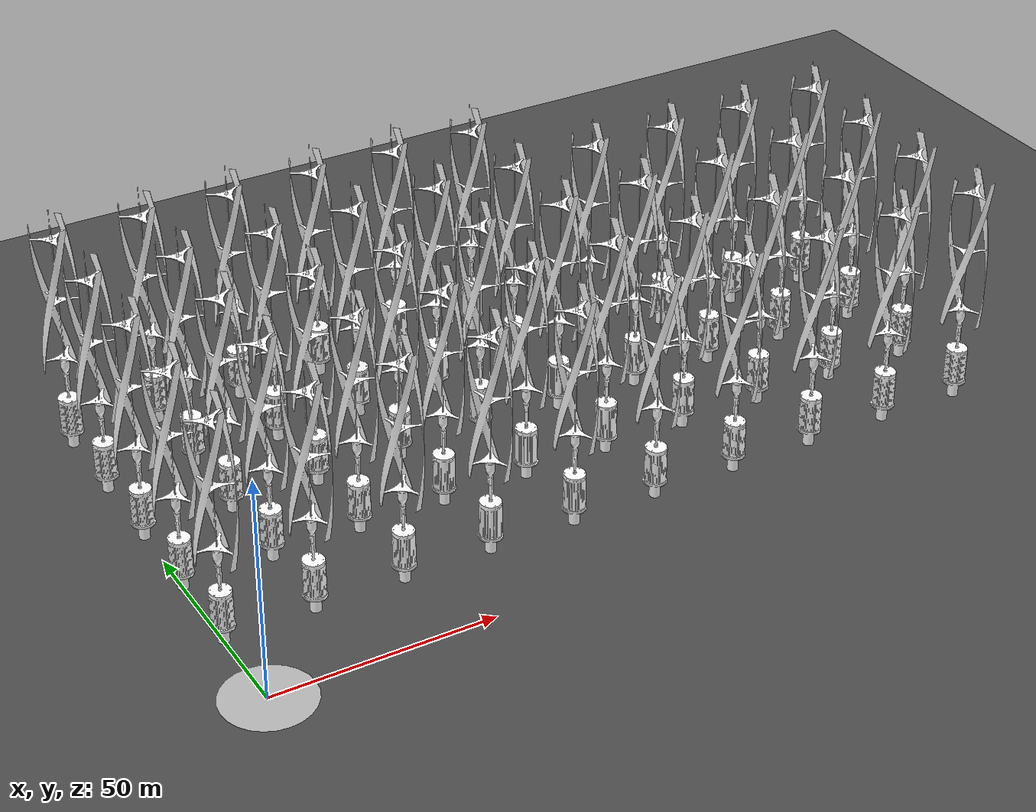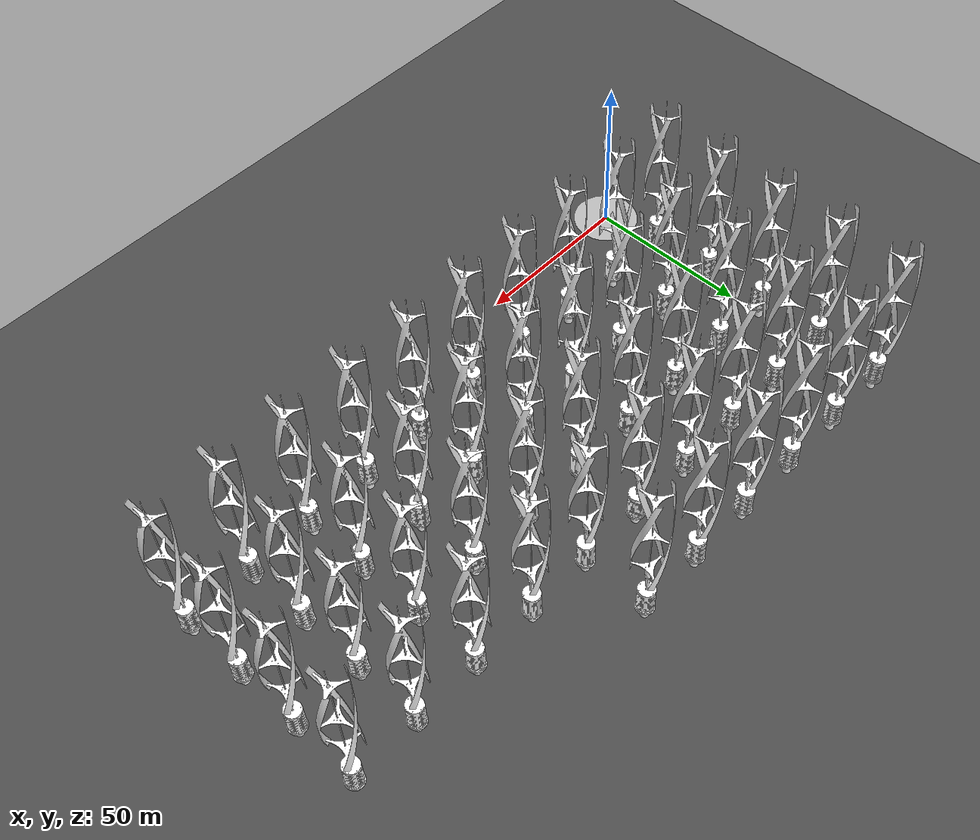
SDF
<sdf version="1.5">
 <world name="default">
  <include><uri>model://sun</uri></include>
  <model name="Helideck FPSO">
   <static>true</static>
   <link name="link">
    <collision name="helideck">
     <pose>0 0 0 3.14 0 0</pose>
     <scale>2 2 1</scale>
     <geometry><mesh><uri>model://helideck/meshes/helideckdae.dae</uri></mesh></geometry>
    </collision>
    <visual name="helideck">
     <pose>0 0 0 3.14 0 0</pose>
     <scale>2 2 1</scale>
     <geometry><mesh><uri>model://helideck/meshes/helideckdae.dae</uri></mesh></geometry>
    </visual>
    <visual name="helideck2">
     <pose>0 0 -0.1 0 0 0</pose>
     <scale>2 2 1</scale>
     <geometry><mesh><uri>model://helideck/meshes/helideckdae.dae</uri></mesh></geometry>
    </visual>
   </link>
  </model>
  <model name="gramado">
   <static>1</static>
   <link name="link">
    <collision name="collision"><geometry><box><size>2000 2000 0.1</size></box></geometry></collision>
    <visual name="visual">
     <cast_shadows>0</cast_shadows>
     <geometry><box><size>2000 2000 0.1</size></box></geometry>
     <material>
      <script>
       <uri>model://gramado/materials/scripts</uri>
       <uri>model://gramado/materials/textures</uri>
       <name>vrc/asphalt</name>
      </script>
     </material>
    </visual>
   </link>
   <pose>0 0 -0.1 0 -0 0</pose>
  </model>
  <model name="Turbina Eolica Vertical0">
   <static>1</static>
   <link name="link">
    <visual name="turbina_eolica_vertical">
     <geometry><mesh><uri>model://turbina_eolica/meshes/turbina_vertical.dae</uri></mesh></geometry>
    </visual>
   </link>
   <pose>0 20 0 0 -0 0</pose>
  </model>
  <model name="Turbina Eolica Vertical1">
   <static>1</static>
   <link name="link">
    <visual name="turbina_eolica_vertical">
     <geometry><mesh><uri>model://turbina_eolica/meshes/turbina_vertical.dae</uri></mesh></geometry>
    </visual>
   </link>
   <pose>0 40 0 0 -0 0</pose>
  </model>
  <model name="Turbina Eolica Vertical2">
   <static>1</static>
   <link name="link">
    <visual name="turbina_eolica_vertical">
     <geometry><mesh><uri>model://turbina_eolica/meshes/turbina_vertical.dae</uri></mesh></geometry>
    </visual>
   </link>
   <pose>0 60 0 0 -0 0</pose>
  </model>
  <model name="Turbina Eolica Vertical3">
   <static>1</static>
   <link name="link">
    <visual name="turbina_eolica_vertical">
     <geometry><mesh><uri>model://turbina_eolica/meshes/turbina_vertical.dae</uri></mesh></geometry>
    </visual>
   </link>
   <pose>0 80 0 0 -0 0</pose>
  </model>
  <model name="Turbina Eolica Vertical4">
   <static>1</static>
   <link name="link">
    <visual name="turbina_eolica_vertical">
     <geometry><mesh><uri>model://turbina_eolica/meshes/turbina_vertical.dae</uri></mesh></geometry>
    </visual>
   </link>
   <pose>0 100 0 0 -0 0</pose>
  </model>
  <model name="Turbina Eolica Vertical10">
   <static>1</static>
   <link name="link">
    <visual name="turbina_eolica_vertical">
     <geometry><mesh><uri>model://turbina_eolica/meshes/turbina_vertical.dae</uri></mesh></geometry>
    </visual>
   </link>
   <pose>20 20 0 0 -0 0</pose>
  </model>
  <model name="Turbina Eolica Vertical11">
   <static>1</static>
   <link name="link">
    <visual name="turbina_eolica_vertical">
     <geometry><mesh><uri>model://turbina_eolica/meshes/turbina_vertical.dae</uri></mesh></geometry>
    </visual>
   </link>
   <pose>20 40 0 0 -0 0</pose>
  </model>
  <model name="Turbina Eolica Vertical12">
   <static>1</static>
   <link name="link">
    <visual name="turbina_eolica_vertical">
     <geometry><mesh><uri>model://turbina_eolica/meshes/turbina_vertical.dae</uri></mesh></geometry>
    </visual>
   </link>
   <pose>20 60 0 0 -0 0</pose>
  </model>
  <model name="Turbina Eolica Vertical13">
   <static>1</static>
   <link name="link">
    <visual name="turbina_eolica_vertical">
     <geometry><mesh><uri>model://turbina_eolica/meshes/turbina_vertical.dae</uri></mesh></geometry>
    </visual>
   </link>
   <pose>20 80 0 0 -0 0</pose>
  </model>
  <model name="Turbina Eolica Vertical14">
   <static>1</static>
   <link name="link">
    <visual name="turbina_eolica_vertical">
     <geometry><mesh><uri>model://turbina_eolica/meshes/turbina_vertical.dae</uri></mesh></geometry>
    </visual>
   </link>
   <pose>20 100 0 0 -0 0</pose>
  </model>
  <model name="Turbina Eolica Vertical20">
   <static>1</static>
   <link name="link">
    <visual name="turbina_eolica_vertical">
     <geometry><mesh><uri>model://turbina_eolica/meshes/turbina_vertical.dae</uri></mesh></geometry>
    </visual>
   </link>
   <pose>40 20 0 0 -0 0</pose>
  </model>
  <model name="Turbina Eolica Vertical21">
   <static>1</static>
   <link name="link">
    <visual name="turbina_eolica_vertical">
     <geometry><mesh><uri>model://turbina_eolica/meshes/turbina_vertical.dae</uri></mesh></geometry>
    </visual>
   </link>
   <pose>40 40 0 0 -0 0</pose>
  </model>
  <model name="Turbina Eolica Vertical22">
   <static>1</static>
   <link name="link">
    <visual name="turbina_eolica_vertical">
     <geometry><mesh><uri>model://turbina_eolica/meshes/turbina_vertical.dae</uri></mesh></geometry>
    </visual>
   </link>
   <pose>40 60 0 0 -0 0</pose>
  </model>
  <model name="Turbina Eolica Vertical23">
   <static>1</static>
   <link name="link">
    <visual name="turbina_eolica_vertical">
     <geometry><mesh><uri>model://turbina_eolica/meshes/turbina_vertical.dae</uri></mesh></geometry>
    </visual>
   </link>
   <pose>40 80 0 0 -0 0</pose>
  </model>
  <model name="Turbina Eolica Vertical24">
   <static>1</static>
   <link name="link">
    <visual name="turbina_eolica_vertical">
     <geometry><mesh><uri>model://turbina_eolica/meshes/turbina_vertical.dae</uri></mesh></geometry>
    </visual>
   </link>
   <pose>40 100 0 0 -0 0</pose>
  </model>
  <model name="Turbina Eolica Vertical30">
   <static>1</static>
   <link name="link">
    <visual name="turbina_eolica_vertical">
     <geometry><mesh><uri>model://turbina_eolica/meshes/turbina_vertical.dae</uri></mesh></geometry>
    </visual>
   </link>
   <pose>60 20 0 0 -0 0</pose>
  </model>
  <model name="Turbina Eolica Vertical31">
   <static>1</static>
   <link name="link">
    <visual name="turbina_eolica_vertical">
     <geometry><mesh><uri>model://turbina_eolica/meshes/turbina_vertical.dae</uri></mesh></geometry>
    </visual>
   </link>
   <pose>60 40 0 0 -0 0</pose>
  </model>
  <model name="Turbina Eolica Vertical32">
   <static>1</static>
   <link name="link">
    <visual name="turbina_eolica_vertical">
     <geometry><mesh><uri>model://turbina_eolica/meshes/turbina_vertical.dae</uri></mesh></geometry>
    </visual>
   </link>
   <pose>60 60 0 0 -0 0</pose>
  </model>
  <model name="Turbina Eolica Vertical33">
   <static>1</static>
   <link name="link">
    <visual name="turbina_eolica_vertical">
     <geometry><mesh><uri>model://turbina_eolica/meshes/turbina_vertical.dae</uri></mesh></geometry>
    </visual>
   </link>
   <pose>60 80 0 0 -0 0</pose>
  </model>
  <model name="Turbina Eolica Vertical34">
   <static>1</static>
   <link name="link">
    <visual name="turbina_eolica_vertical">
     <geometry><mesh><uri>model://turbina_eolica/meshes/turbina_vertical.dae</uri></mesh></geometry>
    </visual>
   </link>
   <pose>60 100 0 0 -0 0</pose>
  </model>
  <model name="Turbina Eolica Vertical40">
   <static>1</static>
   <link name="link">
    <visual name="turbina_eolica_vertical">
     <geometry><mesh><uri>model://turbina_eolica/meshes/turbina_vertical.dae</uri></mesh></geometry>
    </visual>
   </link>
   <pose>80 20 0 0 -0 0</pose>
  </model>
  <model name="Turbina Eolica Vertical41">
   <static>1</static>
   <link name="link">
    <visual name="turbina_eolica_vertical">
     <geometry><mesh><uri>model://turbina_eolica/meshes/turbina_vertical.dae</uri></mesh></geometry>
    </visual>
   </link>
   <pose>80 40 0 0 -0 0</pose>
  </model>
  <model name="Turbina Eolica Vertical42">
   <static>1</static>
   <link name="link">
    <visual name="turbina_eolica_vertical">
     <geometry><mesh><uri>model://turbina_eolica/meshes/turbina_vertical.dae</uri></mesh></geometry>
    </visual>
   </link>
   <pose>80 60 0 0 -0 0</pose>
  </model>
  <model name="Turbina Eolica Vertical43">
   <static>1</static>
   <link name="link">
    <visual name="turbina_eolica_vertical">
     <geometry><mesh><uri>model://turbina_eolica/meshes/turbina_vertical.dae</uri></mesh></geometry>
    </visual>
   </link>
   <pose>80 80 0 0 -0 0</pose>
  </model>
  <model name="Turbina Eolica Vertical44">
   <static>1</static>
   <link name="link">
    <visual name="turbina_eolica_vertical">
     <geometry><mesh><uri>model://turbina_eolica/meshes/turbina_vertical.dae</uri></mesh></geometry>
    </visual>
   </link>
   <pose>80 100 0 0 -0 0</pose>
  </model>
  <model name="Turbina Eolica Vertical50">
   <static>1</static>
   <link name="link">
    <visual name="turbina_eolica_vertical">
     <pose>100 0 0 0 -0 0</pose>
     <geometry><mesh><uri>model://turbina_eolica/meshes/turbina_vertical.dae</uri></mesh></geometry>
    </visual>
   </link>
   <pose>0 20 0 0 -0 0</pose>
  </model>
  <model name="Turbina Eolica Vertical51">
   <static>1</static>
   <link name="link">
    <visual name="turbina_eolica_vertical">
     <geometry><mesh><uri>model://turbina_eolica/meshes/turbina_vertical.dae</uri></mesh></geometry>
    </visual>
   </link>
   <pose>100 40 0 0 -0 0</pose>
  </model>
  <model name="Turbina Eolica Vertical52">
   <static>1</static>
   <link name="link">
    <visual name="turbina_eolica_vertical">
     <geometry><mesh><uri>model://turbina_eolica/meshes/turbina_vertical.dae</uri></mesh></geometry>
    </visual>
   </link>
   <pose>100 60 0 0 -0 0</pose>
  </model>
  <model name="Turbina Eolica Vertical53">
   <static>1</static>
   <link name="link">
    <visual name="turbina_eolica_vertical">
     <geometry><mesh><uri>model://turbina_eolica/meshes/turbina_vertical.dae</uri></mesh></geometry>
    </visual>
   </link>
   <pose>100 80 0 0 -0 0</pose>
  </model>
  <model name="Turbina Eolica Vertical54">
   <static>1</static>
   <link name="link">
    <visual name="turbina_eolica_vertical">
     <geometry><mesh><uri>model://turbina_eolica/meshes/turbina_vertical.dae</uri></mesh></geometry>
    </visual>
   </link>
   <pose>100 100 0 0 -0 0</pose>
  </model>
  <model name="Turbina Eolica Vertical60">
   <static>1</static>
   <link name="link">
    <visual name="turbina_eolica_vertical">
     <geometry><mesh><uri>model://turbina_eolica/meshes/turbina_vertical.dae</uri></mesh></geometry>
    </visual>
   </link>
   <pose>120 20 0 0 -0 0</pose>
  </model>
  <model name="Turbina Eolica Vertical61">
   <static>1</static>
   <link name="link">
    <visual name="turbina_eolica_vertical">
     <geometry><mesh><uri>model://turbina_eolica/meshes/turbina_vertical.dae</uri></mesh></geometry>
    </visual>
   </link>
   <pose>120 40 0 0 -0 0</pose>
  </model>
  <model name="Turbina Eolica Vertical62">
   <static>1</static>
   <link name="link">
    <visual name="turbina_eolica_vertical">
     <geometry><mesh><uri>model://turbina_eolica/meshes/turbina_vertical.dae</uri></mesh></geometry>
    </visual>
   </link>
   <pose>120 60 0 0 -0 0</pose>
  </model>
  <model name="Turbina Eolica Vertical63">
   <static>1</static>
   <link name="link">
    <visual name="turbina_eolica_vertical">
     <geometry><mesh><uri>model://turbina_eolica/meshes/turbina_vertical.dae</uri></mesh></geometry>
    </visual>
   </link>
   <pose>120 80 0 0 -0 0</pose>
  </model>
  <model name="Turbina Eolica Vertical70">
   <static>1</static>
   <link name="link">
    <visual name="turbina_eolica_vertical">
     <geometry><mesh><uri>model://turbina_eolica/meshes/turbina_vertical.dae</uri></mesh></geometry>
    </visual>
   </link>
   <pose>140 20 0 0 -0 0</pose>
  </model>
  <model name="Turbina Eolica Vertical71">
   <static>1</static>
   <link name="link">
    <visual name="turbina_eolica_vertical">
     <geometry><mesh><uri>model://turbina_eolica/meshes/turbina_vertical.dae</uri></mesh></geometry>
    </visual>
   </link>
   <pose>140 40 0 0 -0 0</pose>
  </model>
  <model name="Turbina Eolica Vertical72">
   <static>1</static>
   <link name="link">
    <visual name="turbina_eolica_vertical">
     <geometry><mesh><uri>model://turbina_eolica/meshes/turbina_vertical.dae</uri></mesh></geometry>
    </visual>
   </link>
   <pose>140 60 0 0 -0 0</pose>
  </model>
  <model name="Turbina Eolica Vertical73">
   <static>1</static>
   <link name="link">
    <visual name="turbina_eolica_vertical">
     <geometry><mesh><uri>model://turbina_eolica/meshes/turbina_vertical.dae</uri></mesh></geometry>
    </visual>
   </link>
   <pose>140 80 0 0 -0 0</pose>
  </model>
  <model name="Turbina Eolica Vertical80">
   <static>1</static>
   <link name="link">
    <visual name="turbina_eolica_vertical">
     <geometry><mesh><uri>model://turbina_eolica/meshes/turbina_vertical.dae</uri></mesh></geometry>
    </visual>
   </link>
   <pose>160 20 0 0 -0 0</pose>
  </model>
  <model name="Turbina Eolica Vertical81">
   <static>1</static>
   <link name="link">
    <visual name="turbina_eolica_vertical">
     <geometry><mesh><uri>model://turbina_eolica/meshes/turbina_vertical.dae</uri></mesh></geometry>
    </visual>
   </link>
   <pose>160 40 0 0 -0 0</pose>
  </model>
  <model name="Turbina Eolica Vertical82">
   <static>1</static>
   <link name="link">
    <visual name="turbina_eolica_vertical">
     <geometry><mesh><uri>model://turbina_eolica/meshes/turbina_vertical.dae</uri></mesh></geometry>
    </visual>
   </link>
   <pose>160 60 0 0 -0 0</pose>
  </model>
  <model name="Turbina Eolica Vertical83">
   <static>1</static>
   <link name="link">
    <visual name="turbina_eolica_vertical">
     <geometry><mesh><uri>model://turbina_eolica/meshes/turbina_vertical.dae</uri></mesh></geometry>
    </visual>
   </link>
   <pose>160 80 0 0 -0 0</pose>
  </model>
  <model name="Turbina Eolica Vertical90">
   <static>1</static>
   <link name="link">
    <visual name="turbina_eolica_vertical">
     <geometry><mesh><uri>model://turbina_eolica/meshes/turbina_vertical.dae</uri></mesh></geometry>
    </visual>
   </link>
   <pose>180 20 0 0 -0 0</pose>
  </model>
  <model name="Turbina Eolica Vertical91">
   <static>1</static>
   <link name="link">
    <visual name="turbina_eolica_vertical">
     <geometry><mesh><uri>model://turbina_eolica/meshes/turbina_vertical.dae</uri></mesh></geometry>
    </visual>
   </link>
   <pose>180 40 0 0 -0 0</pose>
  </model>
  <model name="Turbina Eolica Vertical92">
   <static>1</static>
   <link name="link">
    <visual name="turbina_eolica_vertical">
     <geometry><mesh><uri>model://turbina_eolica/meshes/turbina_vertical.dae</uri></mesh></geometry>
    </visual>
   </link>
   <pose>180 60 0 0 -0 0</pose>
  </model>
  <model name="Turbina Eolica Vertical93">
   <static>1</static>
   <link name="link">
    <visual name="turbina_eolica_vertical">
     <geometry><mesh><uri>model://turbina_eolica/meshes/turbina_vertical.dae</uri></mesh></geometry>
    </visual>
   </link>
   <pose>180 80 0 0 -0 0</pose>
  </model>
  <model name="world_ned">
   <static>1</static>
   <link name="world_ned">
    <gravity>0</gravity>
    <pose>0 0 0 -3.14159 -0 1.5708</pose>
    <visual name="N_visual">
     <pose>0.25 0 0 1.5708 -0 1.5708</pose>
     <geometry><cylinder><radius>0.01</radius><length>0.5</length></cylinder></geometry>
     <material>
      <script><uri>file://media/materials/scripts/gazebo.material</uri><name>Gazebo/Red</name></script>
     </material>
    </visual>
    <visual name="E_visual">
     <pose>0 0.25 0 1.5708 -0 0</pose>
     <geometry><cylinder><radius>0.01</radius><length>0.5</length></cylinder></geometry>
     <material>
      <script><uri>file://media/materials/scripts/gazebo.material</uri><name>Gazebo/Green</name></script>
     </material>
    </visual>
    <visual name="D_visual">
     <pose>0 0 0.25 0 -0 0</pose>
     <geometry><cylinder><radius>0.01</radius><length>0.5</length></cylinder></geometry>
     <material>
      <script><uri>file://media/materials/scripts/gazebo.material</uri><name>Gazebo/Blue</name></script>
     </material>
    </visual>
   </link>
  </model>
 </world>
</sdf>
